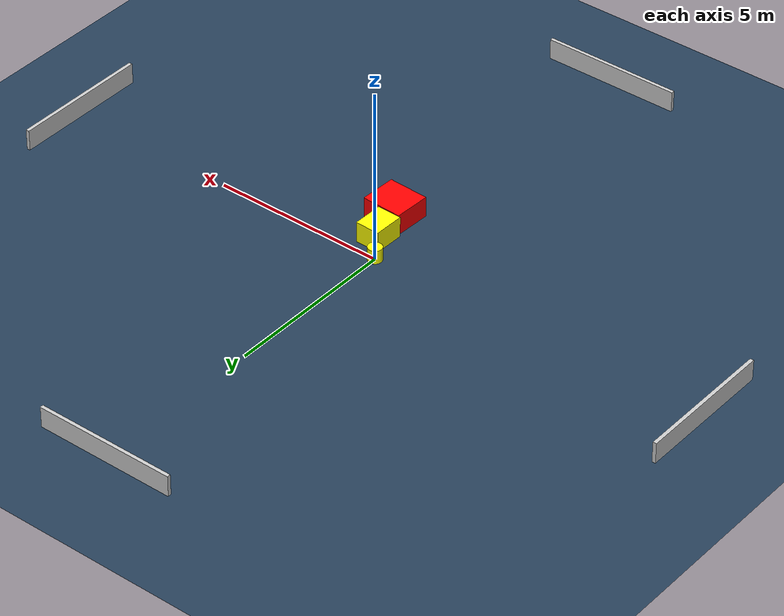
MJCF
<?xml version="1.0" ?>
<mujoco model="generated_environment">
  <option timestep="0.01" integrator="RK4" cone="elliptic"/>
  <default>
    <geom density="1"/>
  </default>
  <asset>
    <texture builtin="gradient" height="3072" name="skybox" rgb1="0.3 0.5 0.7" rgb2="0 0 0" type="skybox" width="512"/>
    <texture builtin="checker" height="300" name="groundplane" rgb1="0.2 0.3 0.4" rgb2="0.1 0.2 0.3" type="2d" width="300"/>
    <material name="groundplane" reflectance="0.2" texrepeat="5 5" texture="groundplane"/>
  </asset>
  <worldbody>
    <light dir="0 0 -1" directional="true" pos="0 0 1.5"/>
    <geom condim="3" friction="0.5 0.005 0.001" material="groundplane" name="floor" pos="0 0 0" size="0 0 0.05" type="plane"/>
    <body name="walls">
      <geom name="wall_1" condim="4" pos="-10.0 0.0 0.3" rgba="0.800000011920929 0.800000011920929 0.800000011920929 1.0" size="0.05 2.0 0.3" type="box"/>
      <geom name="wall_2" condim="4" pos="10.0 0.0 0.3" rgba="0.800000011920929 0.800000011920929 0.800000011920929 1.0" size="0.05 2.0 0.3" type="box"/>
      <geom name="wall_3" condim="4" pos="0.0 -10.0 0.3" rgba="0.800000011920929 0.800000011920929 0.800000011920929 1.0" size="2.0 0.05 0.3" type="box"/>
      <geom name="wall_4" condim="4" pos="0.0 10.0 0.3" rgba="0.800000011920929 0.800000011920929 0.800000011920929 1.0" size="2.0 0.05 0.3" type="box"/>
    </body>
    <body name="robot">
      <joint name="joint_x" type="slide" pos="0 0 0" axis="1 0 0"/>
      <joint name="joint_y" type="slide" pos="0 0 0" axis="0 1 0"/>
      <geom name="robot" type="cylinder" pos="0.0 0.0 0.2" size="0.2 0.2 0.0" mass="5.0" friction="1.0 0.005 0.0001" condim="4" rgba="1.0 1.0 0.0 1.0"/>
    </body>
    <body name="obstacle_1_movable">
      <geom name="obstacle_1_movable" condim="4" pos="0.4751401230832878 -0.7173855050388799 0.3" euler="0 0 178.93716576965934" friction="0.0 0.005 0.001" rgba="1.0 1.0 0.0 1.0" size="0.35427803430262716 0.43904000264346754 0.3" type="box" mass="0.1"/>
      <joint type="free"/>
    </body>
    <body name="obstacle_2_static">
      <geom name="obstacle_2_static" condim="4" pos="0.7458112811085086 -1.7203950511178667 0.3" euler="0 0 87.62568903893218" friction="0.0 0.005 0.001" rgba="1.0 0.0 0.0 1.0" size="0.5283518762239714 0.5839577649538354 0.3" type="box"/>
    </body>
  </worldbody>
  <actuator>
    <motor name="actuator_x" joint="joint_x" gear="1" ctrlrange="-1 1"/>
    <motor name="actuator_y" joint="joint_y" gear="1" ctrlrange="-1 1"/>
  </actuator>
</mujoco>
